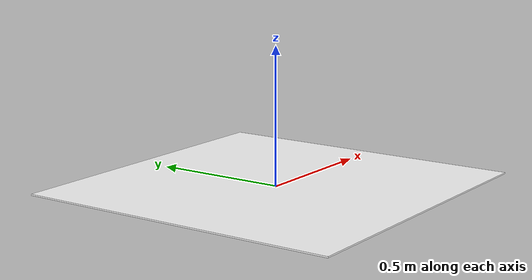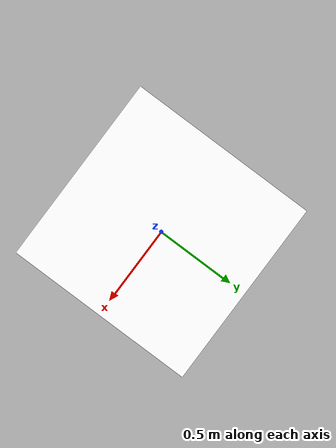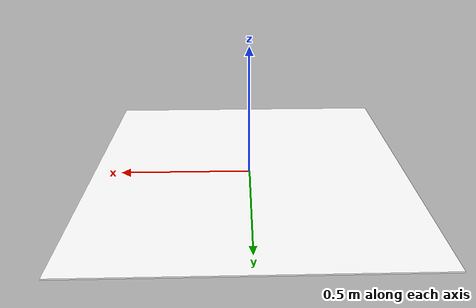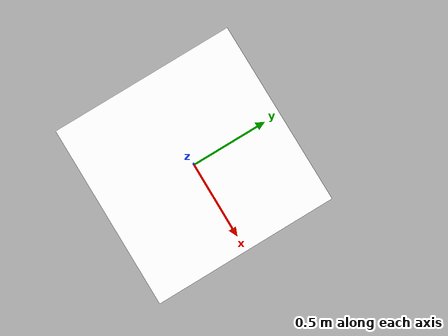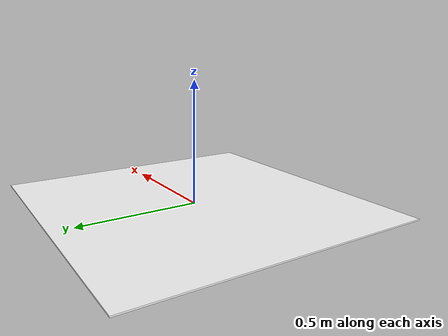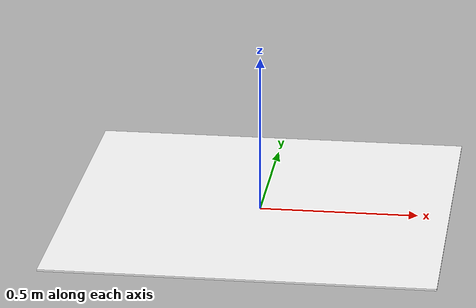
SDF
<?xml version="1.0" ?>
<sdf version="1.6">
  <model name="asbestos_marker">
    <static>true</static>
    <link name="asbestos_hazard_zone">

      <pose>0 0 0 0 0 0</pose> <!-- aligned to world grid -->

      <!-- Circular faded hazard patch -->
      <visual name="asbestos_texture">
        <pose>0 0 0.01 0 0 0</pose> <!-- just above terrain to avoid Z-fighting -->
        <geometry>
          <box>
            <size>1.2 1.2 0.005</size>  <!-- square flat patch -->
          </box>
        </geometry>

        <material>
          <ambient>1 1 1 1</ambient>
          <diffuse>1 1 1 1</diffuse>
          <specular>0.1 0.1 0.1 1</specular>
          <pbr>
            <metal>
              <albedo_map>model://hazard_overlays/asbestos_marker/materials/textures/asbestos_marker_circular_fade.png</albedo_map>
              <roughness>0.6</roughness>
              <metalness>0.0</metalness>
            </metal>
          </pbr>
        </material>
        <cast_shadows>false</cast_shadows>
      </visual>
      <collision name="patch_collision">
        <pose>0 0 0.01 0 0 0</pose>
        <geometry>
          <box>
            <size>1.2 1.2 0.005</size>
          </box>
        </geometry>
      </collision>
    </link>

  </model>
</sdf>
